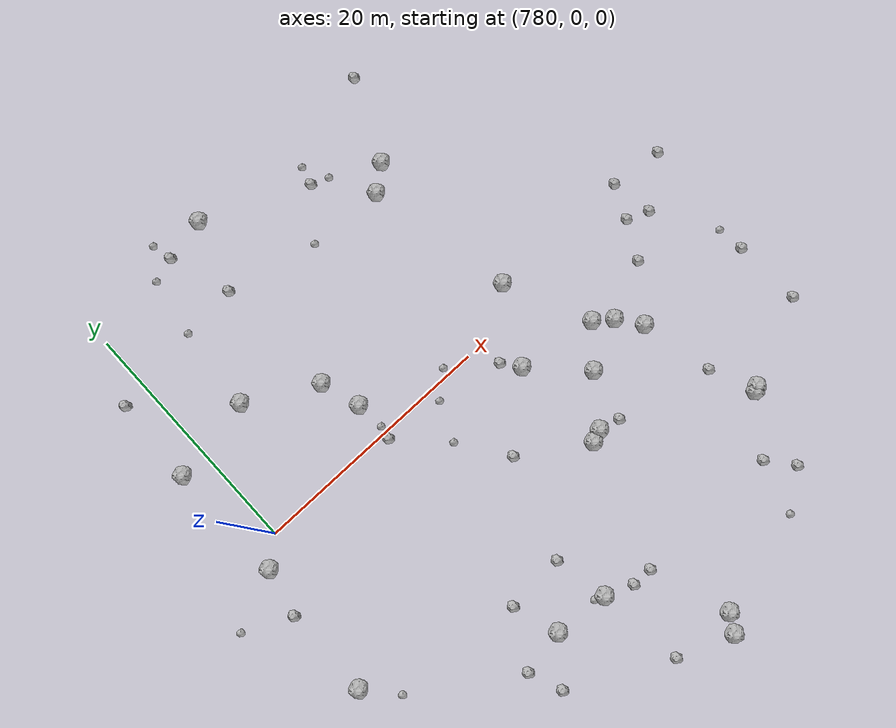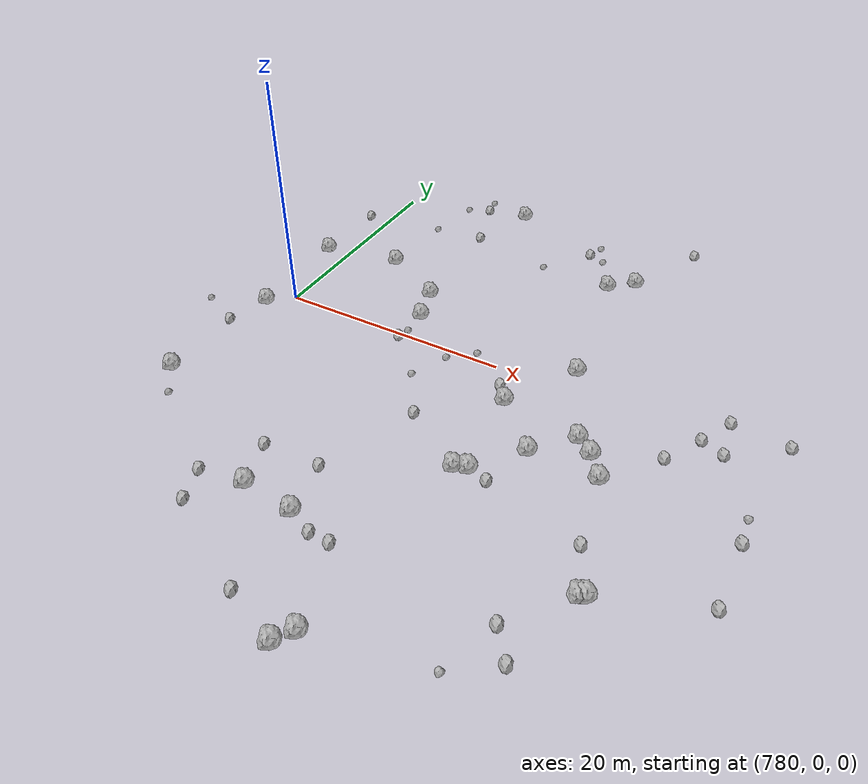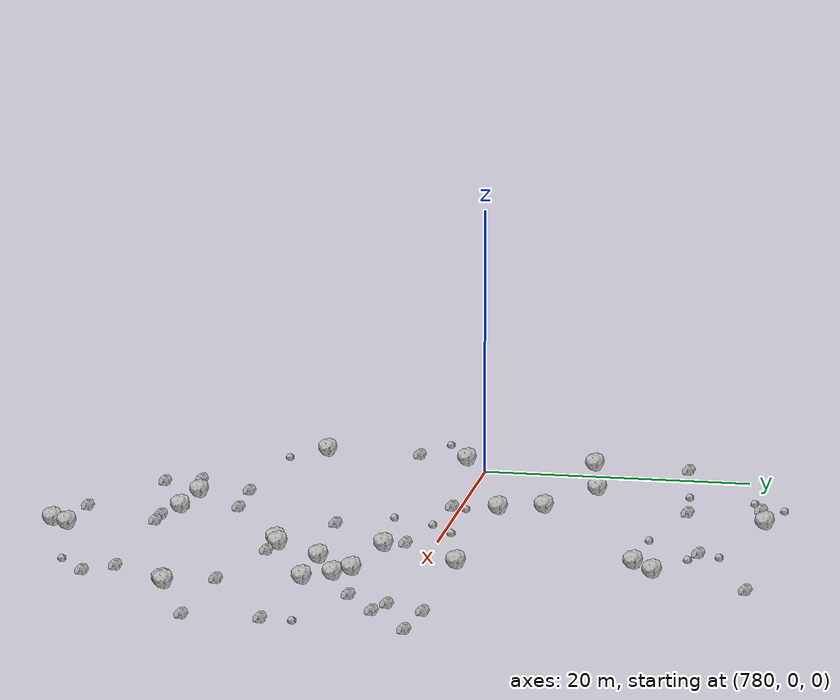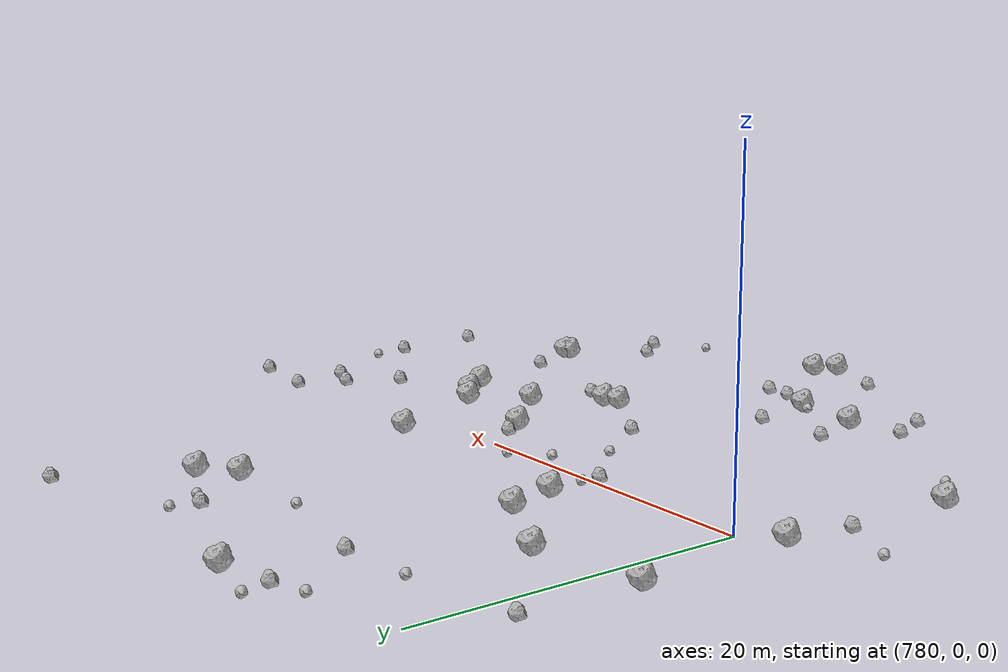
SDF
<sdf version="1.6">
 <world name="default">
  <include><uri>model://sun</uri></include>
  <model name="rock1_20_4">
   <include><uri>model://rock1</uri><pose>791.2218104334966 2.9114100199632844 0.5 0 0 0</pose></include>
  </model>
  <model name="rock1_20_5">
   <include><uri>model://rock1</uri><pose>794.9391632967103 -20.056082226552768 0.5 0 0 0</pose></include>
  </model>
  <model name="rock1_20_6">
   <include><uri>model://rock1</uri><pose>791.8288018756966 22.618991767315464 0.5 0 0 0</pose></include>
  </model>
  <model name="rock1_20_7">
   <include><uri>model://rock1</uri><pose>814.2811033071381 -17.052299221949923 0.5 0 0 0</pose></include>
  </model>
  <model name="rock1_20_8">
   <include><uri>model://rock1</uri><pose>803.7945815174584 14.751050846279355 0.5 0 0 0</pose></include>
  </model>
  <model name="rock1_20_9">
   <include><uri>model://rock1</uri><pose>805.8441400885267 16.404817459952298 0.5 0 0 0</pose></include>
  </model>
  <model name="rock1_20_10">
   <include><uri>model://rock1</uri><pose>790.2643654434029 6.144714523936706 0.5 0 0 0</pose></include>
  </model>
  <model name="rock1_20_11">
   <include><uri>model://rock1</uri><pose>800.8510589162231 -27.145355441264442 0.5 0 0 0</pose></include>
  </model>
  <model name="rock1_20_12">
   <include><uri>model://rock1</uri><pose>810.4003788961586 -5.625959666957613 0.5 0 0 0</pose></include>
  </model>
  <model name="rock1_20_13">
   <include><uri>model://rock1</uri><pose>811.7906221895406 -7.550202900888266 0.5 0 0 0</pose></include>
  </model>
  <model name="rock1_20_14">
   <include><uri>model://rock1</uri><pose>806.0044588446577 2.4100379261553115 0.5 0 0 0</pose></include>
  </model>
  <model name="rock1_20_15">
   <include><uri>model://rock1</uri><pose>790.6026779278719 -19.57908525582556 0.5 0 0 0</pose></include>
  </model>
  <model name="rock1_20_16">
   <include><uri>model://rock1</uri><pose>778.0826523882187 -1.7195908463249765 0.5 0 0 0</pose></include>
  </model>
  <model name="rock1_20_17">
   <include><uri>model://rock1</uri><pose>806.305379290737 -7.4501171326930375 0.5 0 0 0</pose></include>
  </model>
  <model name="rock1_20_18">
   <include><uri>model://rock1</uri><pose>814.6350669015944 -16.8675504411382 0.5 0 0 0</pose></include>
  </model>
  <model name="rock1_20_19">
   <include><uri>model://rock1</uri><pose>809.0030644534113 -4.53624568280642 0.5 0 0 0</pose></include>
  </model>
  <model name="rock1_20_20">
   <include><uri>model://rock1</uri><pose>799.9766062343709 -28.44821142547037 0.5 0 0 0</pose></include>
  </model>
  <model name="rock1_20_21">
   <include><uri>model://rock1</uri><pose>784.6713703841548 9.236697731771407 0.5 0 0 0</pose></include>
  </model>
  <model name="rock1_20_22">
   <include><uri>model://rock1</uri><pose>777.2310338361684 -12.567832317252435 0.5 0 0 0</pose></include>
  </model>
  <model name="rock1_20_23">
   <include><uri>model://rock1</uri><pose>802.4080417491145 -11.369051620703054 0.5 0 0 0</pose></include>
  </model>
  <model name="rock1_20_24">
   <include><uri>model://rock1</uri><pose>802.4651758191961 -3.468388654787997 0.5 0 0 0</pose></include>
  </model>
  <model name="rock1_20_25">
   <include><uri>model://rock1</uri><pose>803.4052882391888 -11.008391472290576 0.5 0 0 0</pose></include>
  </model>
  <model name="rock1_20_26">
   <include><uri>model://rock1</uri><pose>777.8551470781816 7.9942975652977495 0.5 0 0 0</pose></include>
  </model>
  <model name="rock2_20_0">
   <include><uri>model://rock2</uri><pose>787.9635943946274 -22.745153898064352 0.3 0 0 0</pose></include>
  </model>
  <model name="rock2_20_1">
   <include><uri>model://rock2</uri><pose>789.452425343316 -16.02086486113678 0.3 0 0 0</pose></include>
  </model>
  <model name="rock2_20_2">
   <include><uri>model://rock2</uri><pose>809.1936404796161 23.486368103376925 0.3 0 0 0</pose></include>
  </model>
  <model name="rock2_20_3">
   <include><uri>model://rock2</uri><pose>789.7958629463006 16.695563951020176 0.3 0 0 0</pose></include>
  </model>
  <model name="rock2_20_4">
   <include><uri>model://rock2</uri><pose>778.0176285296983 15.138583240806206 0.3 0 0 0</pose></include>
  </model>
  <model name="rock2_20_5">
   <include><uri>model://rock2</uri><pose>805.1022850158814 -11.465606110039822 0.3 0 0 0</pose></include>
  </model>
  <model name="rock2_20_6">
   <include><uri>model://rock2</uri><pose>822.8358595993008 1.8407824761073535 0.3 0 0 0</pose></include>
  </model>
  <model name="rock2_20_7">
   <include><uri>model://rock2</uri><pose>812.4789908366349 -23.211242169914744 0.3 0 0 0</pose></include>
  </model>
  <model name="rock2_20_8">
   <include><uri>model://rock2</uri><pose>794.1544619143432 -15.836917257567682 0.3 0 0 0</pose></include>
  </model>
  <model name="rock2_20_9">
   <include><uri>model://rock2</uri><pose>795.6534128602777 -26.7982722528555 0.3 0 0 0</pose></include>
  </model>
  <model name="rock2_20_10">
   <include><uri>model://rock2</uri><pose>797.1109364914246 -20.97017045290263 0.3 0 0 0</pose></include>
  </model>
  <model name="rock2_20_11">
   <include><uri>model://rock2</uri><pose>812.9224894117392 -13.438247181312882 0.3 0 0 0</pose></include>
  </model>
  <model name="rock2_20_12">
   <include><uri>model://rock2</uri><pose>798.7788069231224 -21.03649156401654 0.3 0 0 0</pose></include>
  </model>
  <model name="rock2_20_13">
   <include><uri>model://rock2</uri><pose>800.4396215358862 18.96576964591174 0.3 0 0 0</pose></include>
  </model>
  <model name="rock2_20_14">
   <include><uri>model://rock2</uri><pose>815.1524716280724 -3.5291303464885395 0.3 0 0 0</pose></include>
  </model>
  <model name="rock2_20_15">
   <include><uri>model://rock2</uri><pose>777.1504531912608 -5.486075676580697 0.3 0 0 0</pose></include>
  </model>
  <model name="rock2_20_16">
   <include><uri>model://rock2</uri><pose>821.9364126658095 -13.91502374002166 0.3 0 0 0</pose></include>
  </model>
  <model name="rock2_20_17">
   <include><uri>model://rock2</uri><pose>818.3328056884569 2.3122006549998133 0.3 0 0 0</pose></include>
  </model>
  <model name="rock2_20_18">
   <include><uri>model://rock2</uri><pose>788.1682273873151 21.895236473091373 0.3 0 0 0</pose></include>
  </model>
  <model name="rock2_20_19">
   <include><uri>model://rock2</uri><pose>821.9019065675341 -8.383123822087558 0.3 0 0 0</pose></include>
  </model>
  <model name="rock2_20_20">
   <include><uri>model://rock2</uri><pose>810.8602373465235 -21.167238626953317 0.3 0 0 0</pose></include>
  </model>
  <model name="rock2_20_21">
   <include><uri>model://rock2</uri><pose>816.9380824293893 -0.4742091680500735 0.3 0 0 0</pose></include>
  </model>
  <model name="rock2_20_22">
   <include><uri>model://rock2</uri><pose>787.0042024469146 -20.15553901331203 0.3 0 0 0</pose></include>
  </model>
  <model name="rock2_20_23">
   <include><uri>model://rock2</uri><pose>797.1622724992053 -8.000458966599744 0.3 0 0 0</pose></include>
  </model>
  <model name="rock2_20_24">
   <include><uri>model://rock2</uri><pose>818.7533471546488 -1.201769050928835 0.3 0 0 0</pose></include>
  </model>
  <model name="rock2_20_25">
   <include><uri>model://rock2</uri><pose>801.4262926328493 -2.050968490315313 0.3 0 0 0</pose></include>
  </model>
  <model name="rock2_20_26">
   <include><uri>model://rock2</uri><pose>791.130796003513 -0.5105915368026785 0.3 0 0 0</pose></include>
  </model>
  <model name="rock3_20_0">
   <include><uri>model://rock3</uri><pose>794.1799170493495 -19.822559754761624 0.2 0 0 0</pose></include>
  </model>
  <model name="rock3_20_1">
   <include><uri>model://rock3</uri><pose>797.313993735707 14.955801268103798 0.2 0 0 0</pose></include>
  </model>
  <model name="rock3_20_2">
   <include><uri>model://rock3</uri><pose>821.7471486525795 -6.1991307694512585 0.2 0 0 0</pose></include>
  </model>
  <model name="rock3_20_3">
   <include><uri>model://rock3</uri><pose>779.2130136073367 -15.081055460484237 0.2 0 0 0</pose></include>
  </model>
  <model name="rock3_20_4">
   <include><uri>model://rock3</uri><pose>797.9265935300506 0.6200308833764936 0.2 0 0 0</pose></include>
  </model>
  <model name="rock3_20_5">
   <include><uri>model://rock3</uri><pose>795.957274980242 -1.0767177066901787 0.2 0 0 0</pose></include>
  </model>
  <model name="rock3_20_6">
   <include><uri>model://rock3</uri><pose>786.1034135248683 21.144538764620876 0.2 0 0 0</pose></include>
  </model>
  <model name="rock3_20_7">
   <include><uri>model://rock3</uri><pose>794.5542085423732 -4.163795029497045 0.2 0 0 0</pose></include>
  </model>
  <model name="rock3_20_8">
   <include><uri>model://rock3</uri><pose>773.4492549776572 -3.7693035158889217 0.2 0 0 0</pose></include>
  </model>
  <model name="rock3_20_9">
   <include><uri>model://rock3</uri><pose>800.8725879401261 20.515211400549454 0.2 0 0 0</pose></include>
  </model>
  <model name="rock3_20_10">
   <include><uri>model://rock3</uri><pose>785.2160270537382 16.213016739973035 0.2 0 0 0</pose></include>
  </model>
  <model name="rock3_20_11">
   <include><uri>model://rock3</uri><pose>809.3901927749242 -25.40885429256783 0.2 0 0 0</pose></include>
  </model>
  <model name="rock3_20_12">
   <include><uri>model://rock3</uri><pose>787.7903385707 23.558457999631372 0.2 0 0 0</pose></include>
  </model>
  <model name="rock3_20_13">
   <include><uri>model://rock3</uri><pose>791.3258702828633 0.5364987550184459 0.2 0 0 0</pose></include>
  </model>
  <model name="rock3_20_14">
   <include><uri>model://rock3</uri><pose>801.8720843088537 18.37585331623874 0.2 0 0 0</pose></include>
  </model>
 </world>
</sdf>
